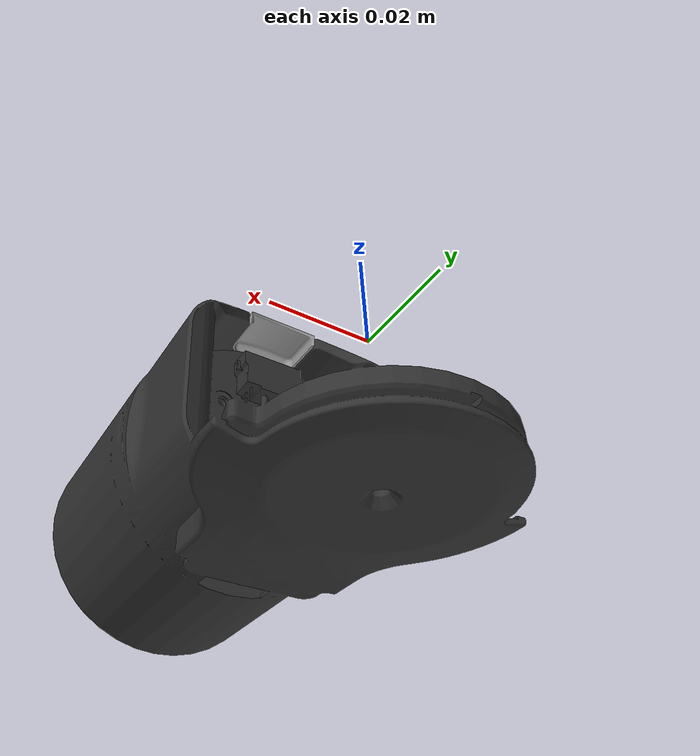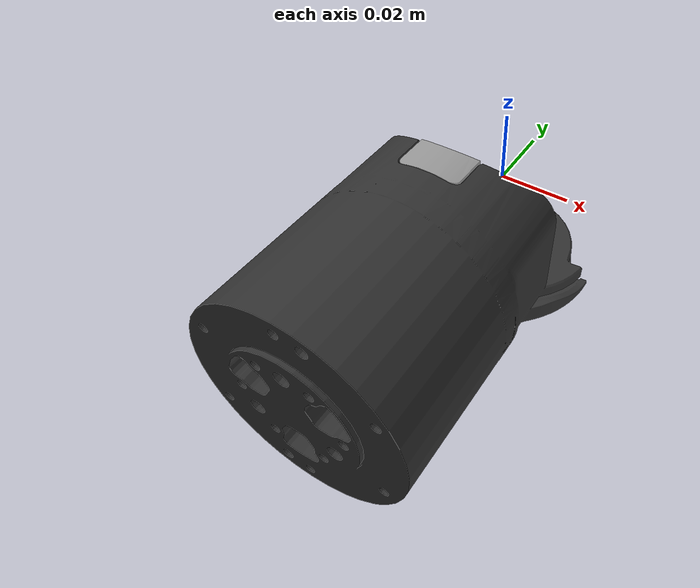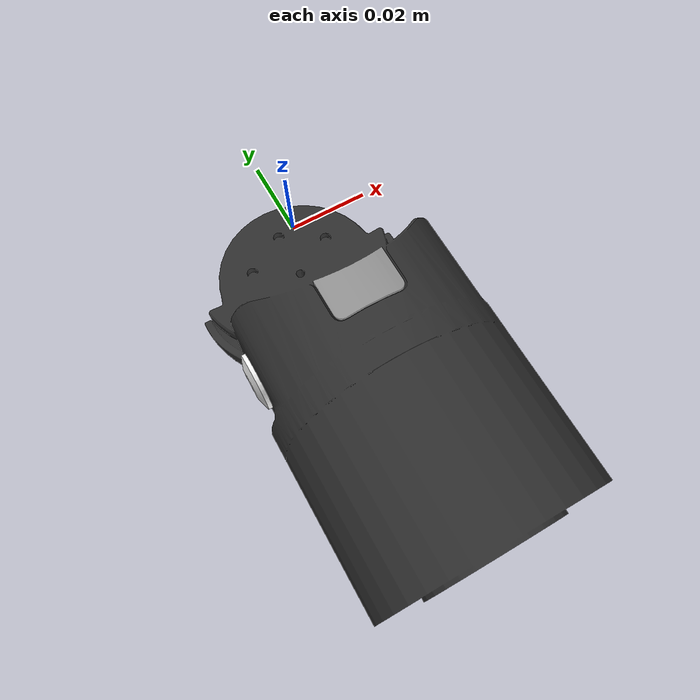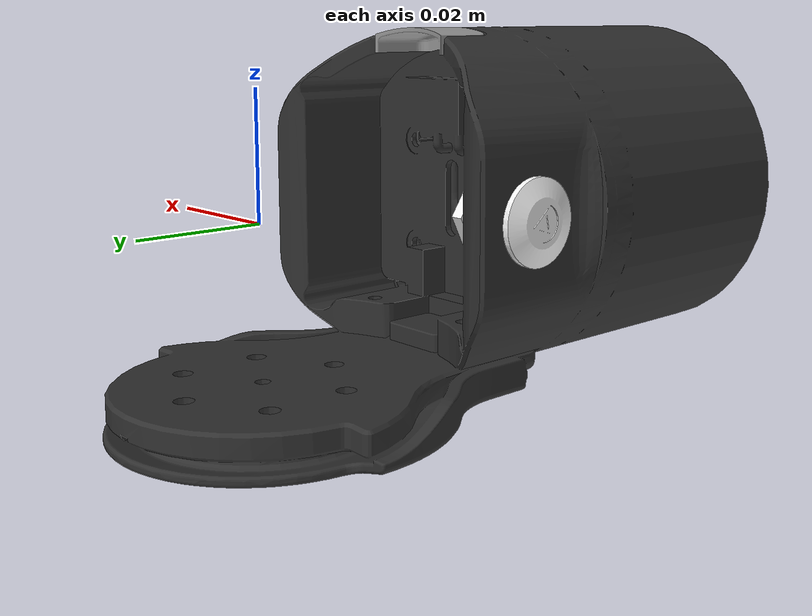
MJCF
<mujoco model="link5">
  <default>
    <default class="visual">
      <geom group="2" type="mesh" contype="0" conaffinity="0"/>
    </default>
    <default class="collision">
      <geom group="3" type="mesh"/>
    </default>
  </default>
  <asset>
    <material name="Material-塑胶.135" specular="0.0" shininess="0.25" rgba="0.588235 0.588235 0.588235 1.000000"/>
    <material name="a0000000-0000-0000-0000-000000000000.010" specular="0.0" shininess="0.25" rgba="0.980392 0.980392 0.980392 1.000000"/>
    <material name="grey_metal.007" specular="0.5" shininess="0.09604875199999999" rgba="0.191349 0.191349 0.191349 1.000000"/>
    <mesh file="link5_0.obj"/>
    <mesh file="link5_1.obj"/>
    <mesh file="link5_2.obj"/>
    <mesh file="link5_collision_0.obj"/>
    <mesh file="link5_collision_1.obj"/>
    <mesh file="link5_collision_2.obj"/>
  </asset>
  <worldbody>
    <body name="link5">
      <geom mesh="link5_0" material="a0000000-0000-0000-0000-000000000000.010" class="visual"/>
      <geom mesh="link5_1" material="grey_metal.007" class="visual"/>
      <geom mesh="link5_2" material="Material-塑胶.135" class="visual"/>
      <geom mesh="link5_collision_0" rgba="0.8047147917799826 0.12826695985156755 0.578677832696772 1" class="collision"/>
      <geom mesh="link5_collision_1" rgba="0.7745447314424568 0.5305405289199454 0.8004735642734013 1" class="collision"/>
      <geom mesh="link5_collision_2" rgba="0.7354291629173523 0.13663481594822469 0.38056740700502456 1" class="collision"/>
    </body>
  </worldbody>
</mujoco>
